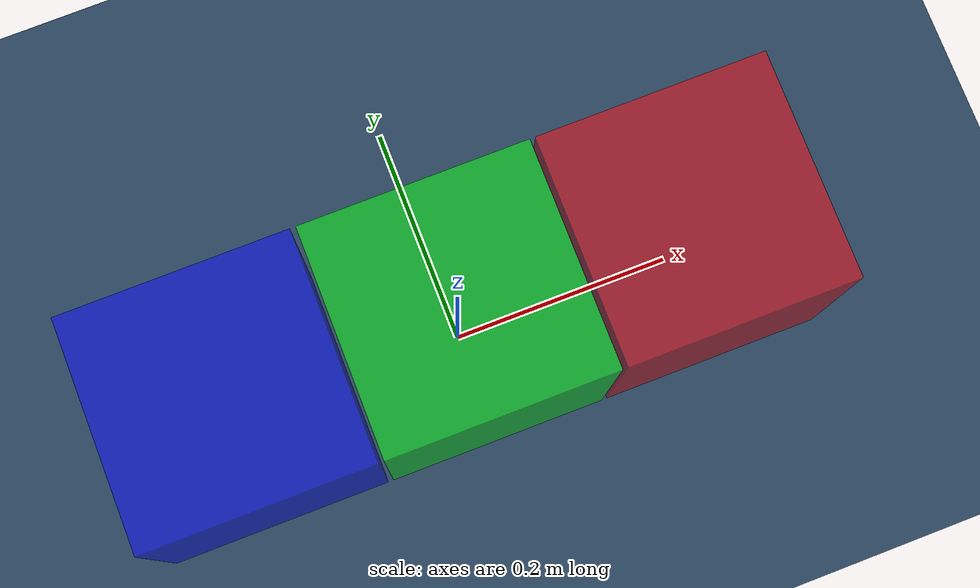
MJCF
<mujoco model="two_blocks">
    <compiler angle="radian"/>
    <option gravity="0 0 -9.81">
    <!--flag multiccd="enable"/-->
    </option>
      <!-- Enable gravity -->

    <statistic center="0.2 0 0.2" extent="1.0"/>

    <visual>
        <headlight diffuse="0.6 0.6 0.6" ambient="0.3 0.3 0.3" specular="0 0 0"/>
        <rgba haze="0.15 0.25 0.35 1"/>
        <global azimuth="-120" elevation="-20"/>
    </visual>

    <asset>
        <texture type="skybox" builtin="gradient" rgb1="0.3 0.5 0.7" rgb2="0 0 0" width="512" height="3072"/>
        <texture type="2d" name="groundplane" builtin="checker" mark="edge" rgb1="0.2 0.3 0.4" rgb2="0.1 0.2 0.3"
                 markrgb="0.8 0.8 0.8" width="300" height="300"/>
        <material name="groundplane" texture="groundplane" texuniform="true" texrepeat="5 5" reflectance="0.2"/>
    </asset>

    <worldbody>
        <!-- Ground Plane -->
        <light pos="0 0 1.5" dir="0 0 -1" directional="true"/>
        <geom name="floor" size="0 0 0.05" type="plane" material="groundplane"/>

        <!-- Block 1 -->
        <body name="block1" pos="0.205 0 0.1">
            <freejoint/>
            <geom name="block1_geom" type="box" size="0.1 0.1 0.1" rgba="1 0 0 0.5" condim="1"/>
        </body>

        <!-- Block 2 -->
        <body name="block2" pos="-0.0 0 0.1">
            <freejoint/>
            <geom name="block2_geom" type="box" size="0.1 0.1 0.1" rgba="0 1 0 0.5" condim="1"/>
        </body>

        <!-- Block 3 -->
        <body name="block3" pos="-0.205 0 0.1">
            <freejoint/>
            <geom name="block3_geom" type="box" size="0.1 0.1 0.1" rgba="0 0 1 0.5" condim="1"/>
        </body>

    </worldbody>
</mujoco>
